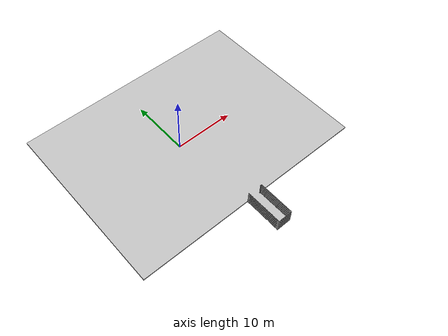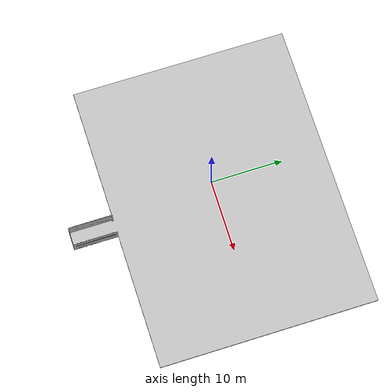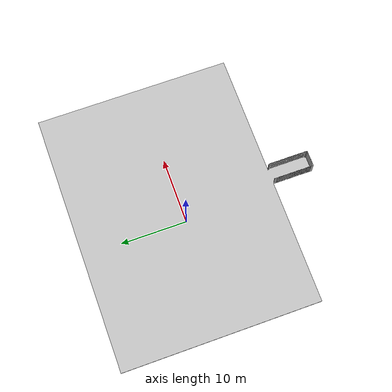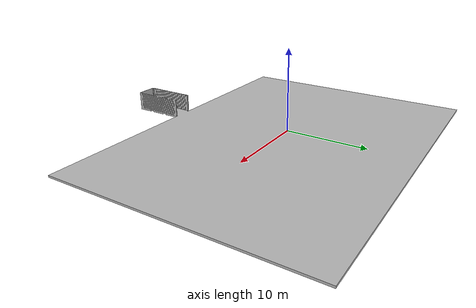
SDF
<sdf version="1.7">
 <world name="default">
  <light name="sun" type="directional">
   <pose>0 0 10 0 -0 0</pose>
   <diffuse>0.8 0.8 0.8 1</diffuse>
   <specular>0.2 0.2 0.2 1</specular>
   <attenuation>
    <range>1000</range>
    <constant>0.9</constant>
    <linear>0.01</linear>
    <quadratic>0.001</quadratic>
   </attenuation>
   <direction>-0.5 0.1 -0.9</direction>
   <spot><inner_angle>0</inner_angle><outer_angle>0</outer_angle><falloff>0</falloff></spot>
  </light>
  <gravity>0 0 -9.8</gravity>
  <magnetic_field>6e-06 2.3e-05 -4.2e-05</magnetic_field>
  <atmosphere type="adiabatic"/>
  <physics type="ode">
   <max_step_size>0.001</max_step_size>
   <real_time_factor>1</real_time_factor>
   <real_time_update_rate>1000</real_time_update_rate>
  </physics>
  <scene><ambient>0.4 0.4 0.4 1</ambient><background>0.7 0.7 0.7 1</background><shadows>1</shadows></scene>
  <spherical_coordinates>
   <surface_model>EARTH_WGS84</surface_model>
   <latitude_deg>0</latitude_deg>
   <longitude_deg>0</longitude_deg>
   <elevation>0</elevation>
   <heading_deg>0</heading_deg>
  </spherical_coordinates>
  <model name="Warehouse_with_open_top_container">
   <static>1</static>
   <link name="link">
    <collision name="collision">
     <geometry>
      <mesh><uri>model://warehouse_03/meshes/warehouse_v05_2 v1.stl</uri><scale>0.001 0.001 0.001</scale></mesh>
     </geometry>
    </collision>
    <visual name="visual">
     <geometry>
      <mesh><uri>model://warehouse_03/meshes/warehouse_v05_2 v1.stl</uri><scale>0.001 0.001 0.001</scale></mesh>
     </geometry>
    </visual>
   </link>
   <pose>2.32357 -14.1103 0 0 -0 0</pose>
  </model>
 </world>
</sdf>
